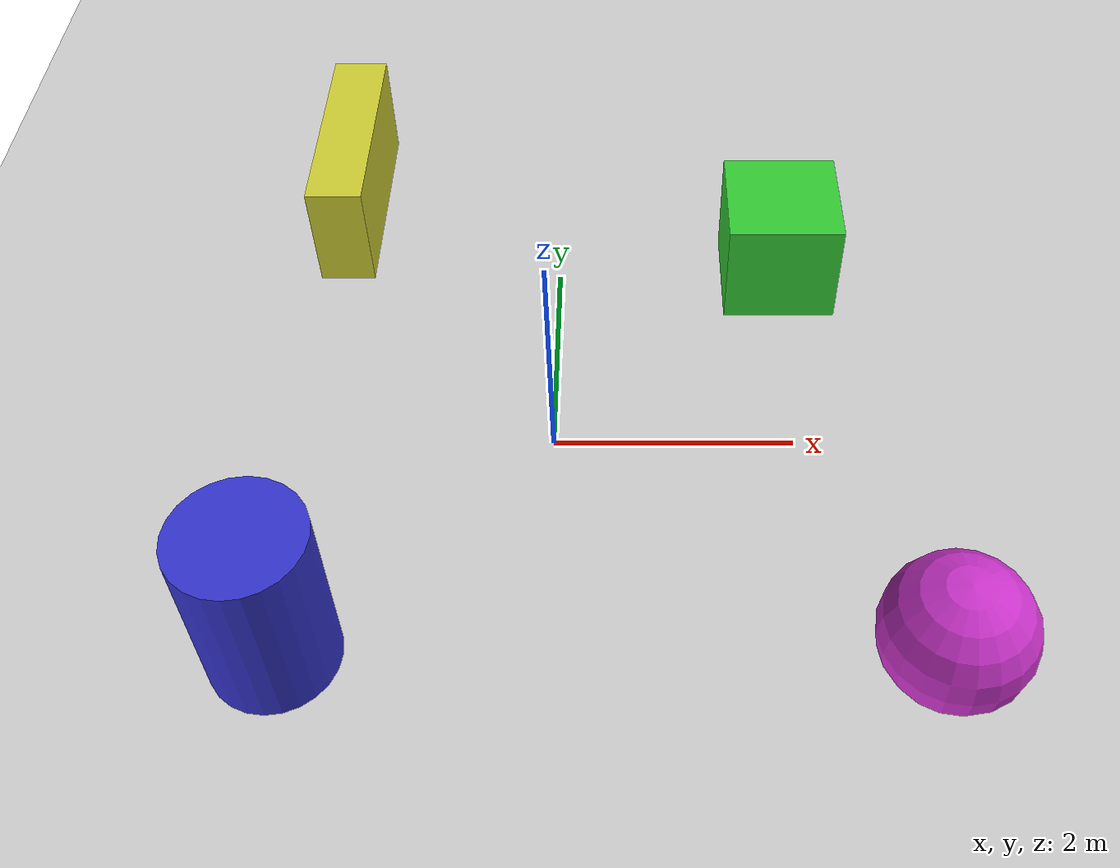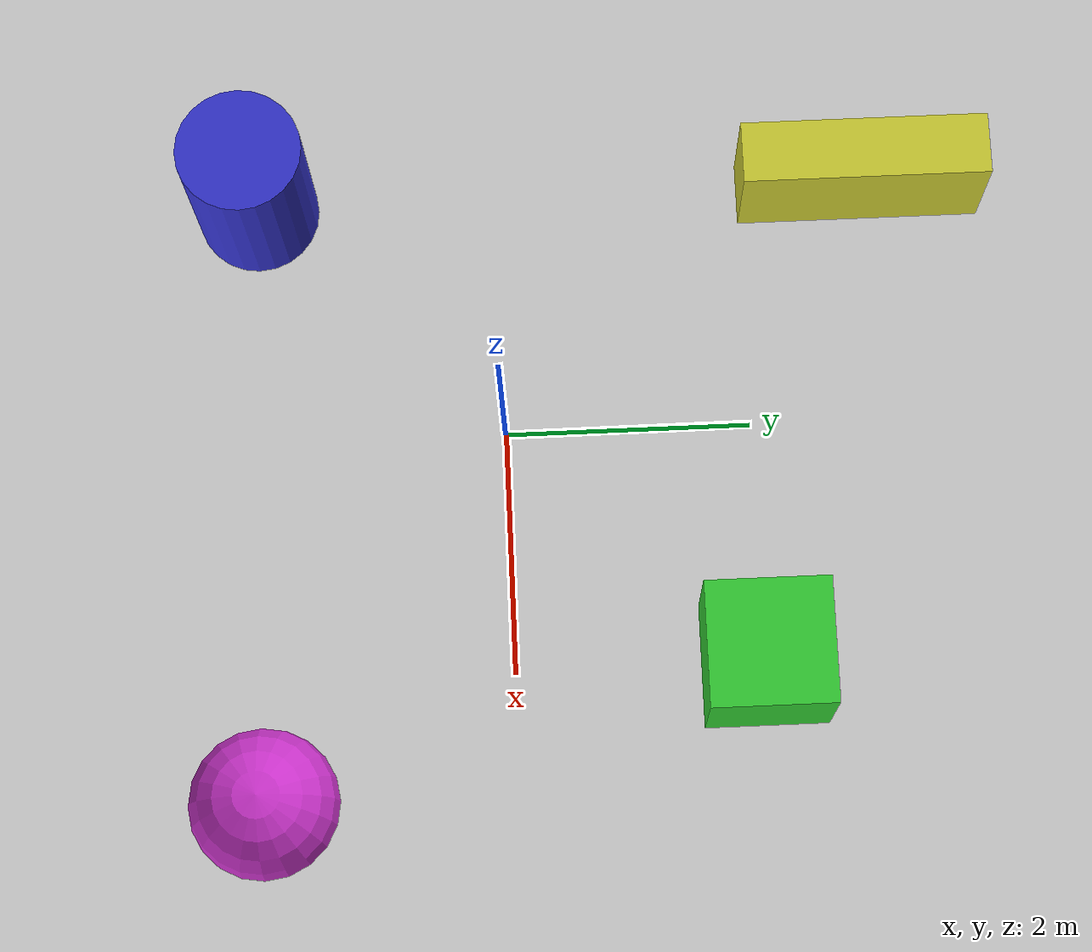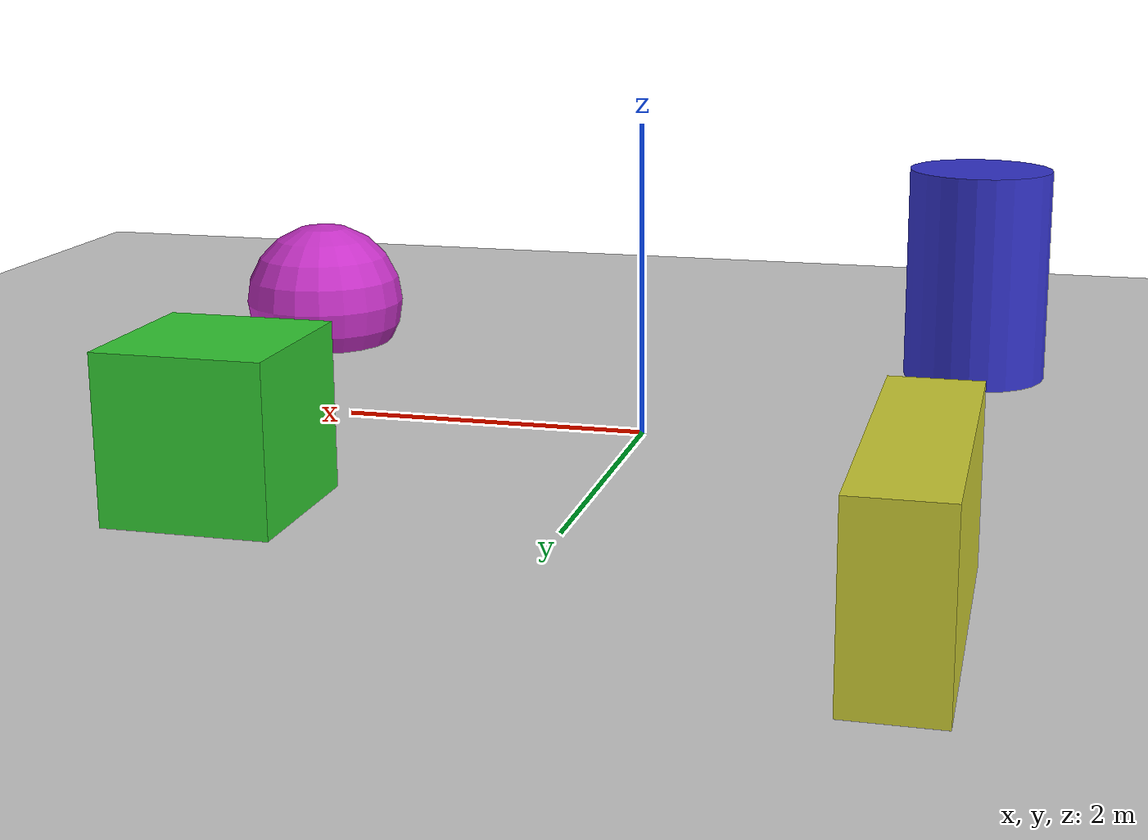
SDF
<?xml version="1.0" ?>
<sdf version="1.6">
  <world name="default">

    <!-- Light Source -->
    <include>
      <uri>model://sun</uri>
    </include>

    <!-- Ground Plane -->
    <include>
      <uri>model://ground_plane</uri>
    </include>

    <!-- Physics -->
    <physics type="ode">
      <real_time_update_rate>1000.0</real_time_update_rate>
      <max_step_size>0.001</max_step_size>
      <real_time_factor>1</real_time_factor>
    </physics>

    <!-- Scene -->
    <scene>
      <ambient>0.4 0.4 0.4 1</ambient>
      <background>0.7 0.7 0.7 1</background>
      <shadows>true</shadows>
    </scene>

    <!-- Obstacles -->
    <model name="obstacle_1">
      <static>true</static>
      <pose>2 2 0.5 0 0 0</pose>
      <link name="link">
        <collision name="collision">
          <geometry>
            <box>
              <size>1 1 1</size>
            </box>
          </geometry>
        </collision>
        <visual name="visual">
          <geometry>
            <box>
              <size>1 1 1</size>
            </box>
          </geometry>
          <material>
            <ambient>0.2 0.8 0.2 1</ambient>
            <diffuse>0.2 0.8 0.2 1</diffuse>
          </material>
        </visual>
      </link>
    </model>

    <model name="obstacle_2">
      <static>true</static>
      <pose>-2 -2 0.75 0 0 0</pose>
      <link name="link">
        <collision name="collision">
          <geometry>
            <cylinder>
              <radius>0.5</radius>
              <length>1.5</length>
            </cylinder>
          </geometry>
        </collision>
        <visual name="visual">
          <geometry>
            <cylinder>
              <radius>0.5</radius>
              <length>1.5</length>
            </cylinder>
          </geometry>
          <material>
            <ambient>0.2 0.2 0.8 1</ambient>
            <diffuse>0.2 0.2 0.8 1</diffuse>
          </material>
        </visual>
      </link>
    </model>

    <model name="obstacle_3">
      <static>true</static>
      <pose>-2 3 0.5 0 0 0</pose>
      <link name="link">
        <collision name="collision">
          <geometry>
            <box>
              <size>0.5 2 1</size>
            </box>
          </geometry>
        </collision>
        <visual name="visual">
          <geometry>
            <box>
              <size>0.5 2 1</size>
            </box>
          </geometry>
          <material>
            <ambient>0.8 0.8 0.2 1</ambient>
            <diffuse>0.8 0.8 0.2 1</diffuse>
          </material>
        </visual>
      </link>
    </model>

    <model name="obstacle_4">
      <static>true</static>
      <pose>3 -2 0.3 0 0 0</pose>
      <link name="link">
        <collision name="collision">
          <geometry>
            <sphere>
              <radius>0.6</radius>
            </sphere>
          </geometry>
        </collision>
        <visual name="visual">
          <geometry>
            <sphere>
              <radius>0.6</radius>
            </sphere>
          </geometry>
          <material>
            <ambient>0.8 0.2 0.8 1</ambient>
            <diffuse>0.8 0.2 0.8 1</diffuse>
          </material>
        </visual>
      </link>
    </model>

    <!-- GUI -->
    <gui fullscreen='0'>
      <camera name='user_camera'>
        <pose>-8 -8 8 0 0.5 0.785</pose>
        <view_controller>orbit</view_controller>
      </camera>
    </gui>

  </world>
</sdf>
